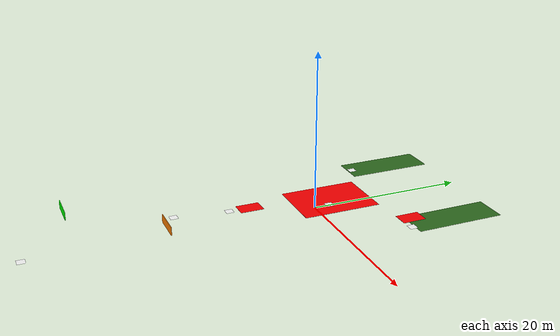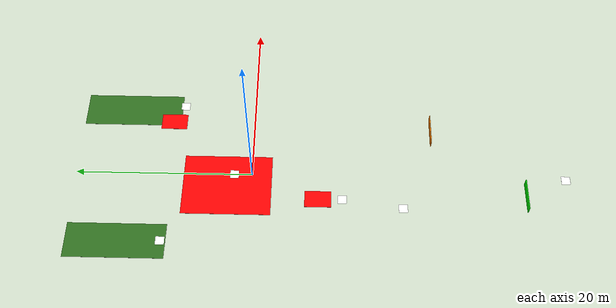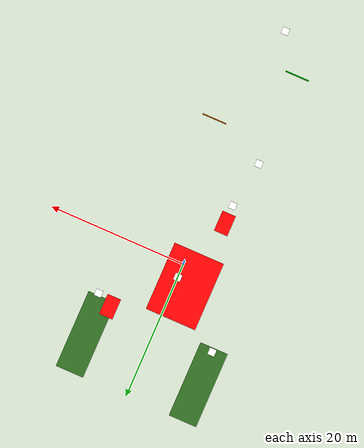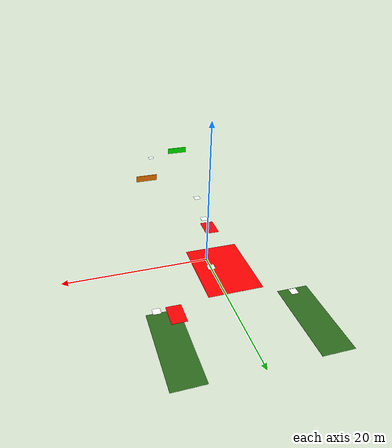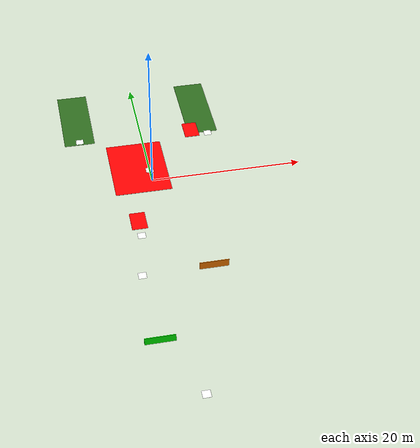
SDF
<sdf version="1.6">
 <world name="miss2_world">
  <physics name="1ms" type="ignored">
   <max_step_size>0.001</max_step_size>
   <real_time_factor>1.0</real_time_factor>
  </physics>
  <plugin filename="gz-sim-physics-system" name="gz::sim::systems::Physics"/>
  <plugin filename="gz-sim-user-commands-system" name="gz::sim::systems::UserCommands"/>
  <plugin filename="gz-sim-scene-broadcaster-system" name="gz::sim::systems::SceneBroadcaster"/>
  <plugin filename="gz-sim-imu-system" name="gz::sim::systems::Imu"/>
  <light type="directional" name="sun">
   <pose>0 0 15 0 0 0</pose>
   <diffuse>0.8 0.8 0.8 1</diffuse>
   <specular>0.2 0.2 0.2 1</specular>
   <direction>-0.5 0.1 -0.9</direction>
  </light>
  <include><uri>model://qr_markers</uri></include>
  <plugin filename="gz-sim-sensors-system" name="gz::sim::systems::Sensors">
   <render_engine>ogre2</render_engine>
  </plugin>
  <model name="green_banner">
   <static>true</static>
   <pose>-4 -30 3.548 0 0 0</pose>
   <link name="banner_link">
    <visual name="banner_visual">
     <geometry><box><size>3.5 0.08 1.0</size></box></geometry>
     <material><ambient>0 1 0 1</ambient><diffuse>0 1 0 1</diffuse><specular>0 0 0 1</specular></material>
    </visual>
   </link>
  </model>
  <model name="orange_banner">
   <static>true</static>
   <pose>4.1 -20 3.548 0 0 0</pose>
   <link name="banner_link">
    <visual name="banner_visual">
     <geometry><box><size>3.5 0.08 1.0</size></box></geometry>
     <material><ambient>1 0.5 0 1</ambient><diffuse>1 0.5 0 1</diffuse><specular>0 0 0 1</specular></material>
    </visual>
   </link>
  </model>
  <model name="coverage_red_zone_1">
   <static>true</static>
   <pose>-3 -7.5 0.095 0 0 0</pose>
   <link name="paint">
    <visual name="red">
     <geometry><box><size>2 3 0.02</size></box></geometry>
     <material><ambient>1 0 0 1</ambient><diffuse>1 0 0 1</diffuse></material>
    </visual>
   </link>
  </model>
  <model name="coverage_red_zone_2">
   <static>true</static>
   <pose>7 9.5 0.095 0 0 0</pose>
   <link name="paint">
    <visual name="red">
     <geometry><box><size>2 3 0.02</size></box></geometry>
     <material><ambient>1 0 0 1</ambient><diffuse>1 0 0 1</diffuse></material>
    </visual>
   </link>
  </model>
  <model name="coverage_red_zone_central_paint">
   <static>true</static>
   <pose>-1.395 2.75 0.10 0 0 0</pose>
   <link name="paint">
    <visual name="red">
     <geometry><box><size>7.43 10.0 0.02</size></box></geometry>
     <material><ambient>1 0 0 1</ambient><diffuse>1 0 0 1</diffuse></material>
    </visual>
   </link>
  </model>
  <model name="coverage_grass_backing_east">
   <static>true</static>
   <pose>8.55 14.35 0.08 0 0 0</pose>
   <link name="paint">
    <visual name="grass">
     <geometry><box><size>4.1 11.3 0.01</size></box></geometry>
     <material><ambient>0.18 0.42 0.12 1</ambient><diffuse>0.18 0.42 0.12 1</diffuse></material>
    </visual>
   </link>
  </model>
  <model name="coverage_grass_backing_west">
   <static>true</static>
   <pose>-8.55 14.5 0.08 0 0 0</pose>
   <link name="paint">
    <visual name="grass">
     <geometry><box><size>4.1 11.0 0.01</size></box></geometry>
     <material><ambient>0.18 0.42 0.12 1</ambient><diffuse>0.18 0.42 0.12 1</diffuse></material>
    </visual>
   </link>
  </model>
 </world>
</sdf>

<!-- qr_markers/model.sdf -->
<sdf version="1.9">
  <model name="qr_markers">
    <static>true</static>
    <model name="qr_start">
      <static>true</static>
      <pose>0.0 -35.5 0.12 0 0 0</pose>
      <link name="print">
        <visual name="qr">
          <geometry>
            <plane>
              <normal>0 0 1</normal>
              <size>1.0 1.0</size>
            </plane>
          </geometry>
          <material>
            <ambient>1 1 1 1</ambient>
            <diffuse>1 1 1 1</diffuse>
            <specular>0 0 0 1</specular>
            <lighting>false</lighting>
            <pbr>
              <metal>
                <albedo_map>model://qr_markers/materials/textures/qr_start.png</albedo_map>
                <roughness>1</roughness>
                <metalness>0</metalness>
              </metal>
            </pbr>
          </material>
        </visual>
      </link>
    </model>
    <model name="qr_nonmatch_early">
      <static>true</static>
      <pose>-4.0 -17.0 0.12 0 0 0</pose>
      <link name="print">
        <visual name="qr">
          <geometry>
            <plane>
              <normal>0 0 1</normal>
              <size>1.0 1.0</size>
            </plane>
          </geometry>
          <material>
            <ambient>1 1 1 1</ambient>
            <diffuse>1 1 1 1</diffuse>
            <specular>0 0 0 1</specular>
            <lighting>false</lighting>
            <pbr>
              <metal>
                <albedo_map>model://qr_markers/materials/textures/qr_nonmatch_early.png</albedo_map>
                <roughness>1</roughness>
                <metalness>0</metalness>
              </metal>
            </pbr>
          </material>
        </visual>
      </link>
    </model>
    <model name="qr_target_early">
      <static>true</static>
      <pose>-3.0 -10.2 0.12 0 0 0</pose>
      <link name="print">
        <visual name="qr">
          <geometry>
            <plane>
              <normal>0 0 1</normal>
              <size>1.0 1.0</size>
            </plane>
          </geometry>
          <material>
            <ambient>1 1 1 1</ambient>
            <diffuse>1 1 1 1</diffuse>
            <specular>0 0 0 1</specular>
            <lighting>false</lighting>
            <pbr>
              <metal>
                <albedo_map>model://qr_markers/materials/textures/qr_target_early.png</albedo_map>
                <roughness>1</roughness>
                <metalness>0</metalness>
              </metal>
            </pbr>
          </material>
        </visual>
      </link>
    </model>
    <model name="qr_nonmatch_west">
      <static>true</static>
      <pose>-8.5 9.6 0.12 0 0 0</pose>
      <link name="print">
        <visual name="qr">
          <geometry>
            <plane>
              <normal>0 0 1</normal>
              <size>1.0 1.0</size>
            </plane>
          </geometry>
          <material>
            <ambient>1 1 1 1</ambient>
            <diffuse>1 1 1 1</diffuse>
            <specular>0 0 0 1</specular>
            <lighting>false</lighting>
            <pbr>
              <metal>
                <albedo_map>model://qr_markers/materials/textures/qr_nonmatch_west.png</albedo_map>
                <roughness>1</roughness>
                <metalness>0</metalness>
              </metal>
            </pbr>
          </material>
        </visual>
      </link>
    </model>
    <model name="qr_nonmatch_east">
      <static>true</static>
      <pose>9.2 8.4 0.12 0 0 0</pose>
      <link name="print">
        <visual name="qr">
          <geometry>
            <plane>
              <normal>0 0 1</normal>
              <size>1.0 1.0</size>
            </plane>
          </geometry>
          <material>
            <ambient>1 1 1 1</ambient>
            <diffuse>1 1 1 1</diffuse>
            <specular>0 0 0 1</specular>
            <lighting>false</lighting>
            <pbr>
              <metal>
                <albedo_map>model://qr_markers/materials/textures/qr_nonmatch_east.png</albedo_map>
                <roughness>1</roughness>
                <metalness>0</metalness>
              </metal>
            </pbr>
          </material>
        </visual>
      </link>
    </model>
    <model name="qr_red_excluded">
      <static>true</static>
      <pose>0.0 2.0 0.12 0 0 0</pose>
      <link name="print">
        <visual name="qr">
          <geometry>
            <plane>
              <normal>0 0 1</normal>
              <size>1.0 1.0</size>
            </plane>
          </geometry>
          <material>
            <ambient>1 1 1 1</ambient>
            <diffuse>1 1 1 1</diffuse>
            <specular>0 0 0 1</specular>
            <lighting>false</lighting>
            <pbr>
              <metal>
                <albedo_map>model://qr_markers/materials/textures/qr_red_excluded.png</albedo_map>
                <roughness>1</roughness>
                <metalness>0</metalness>
              </metal>
            </pbr>
          </material>
        </visual>
      </link>
    </model>
  </model>
</sdf>
